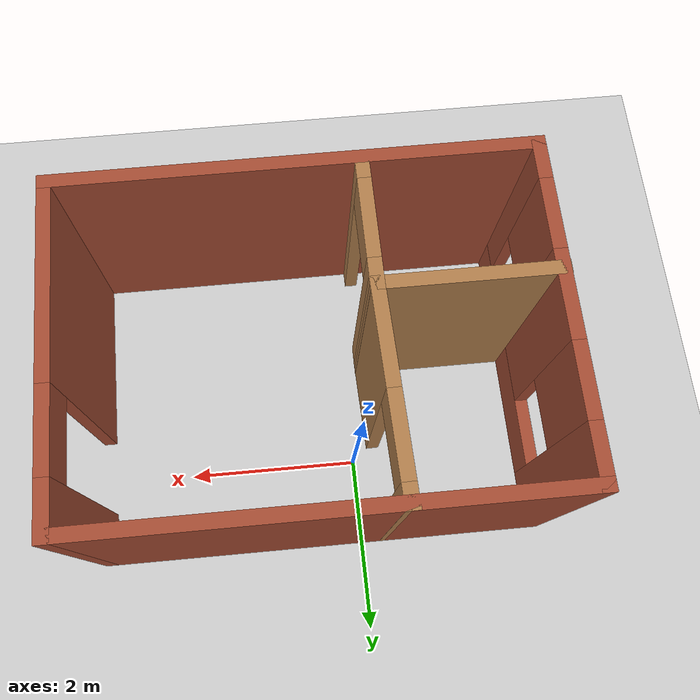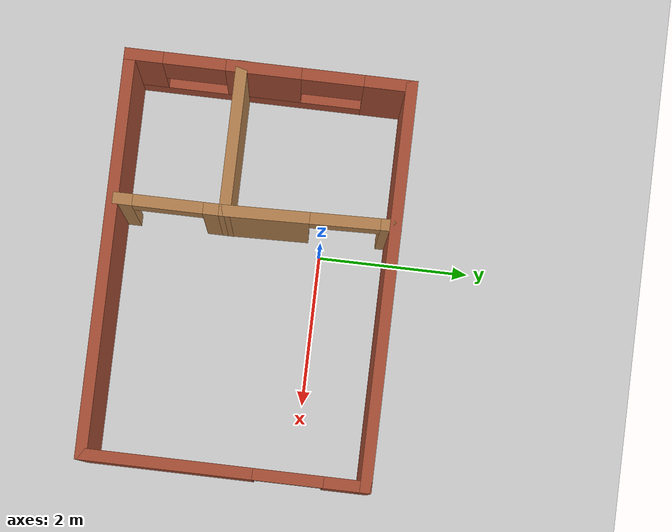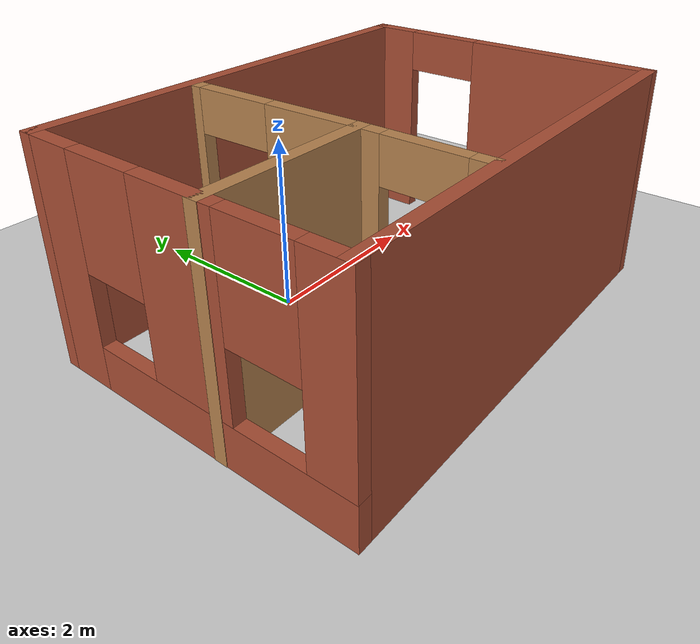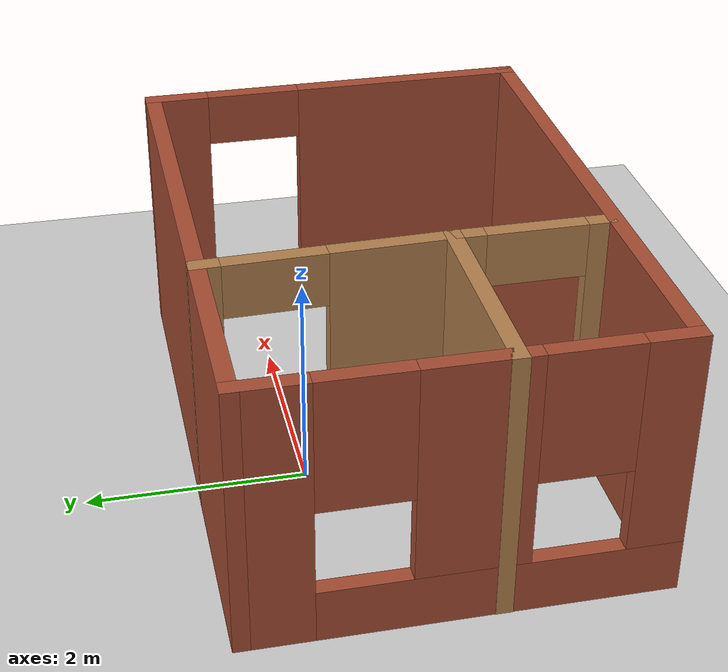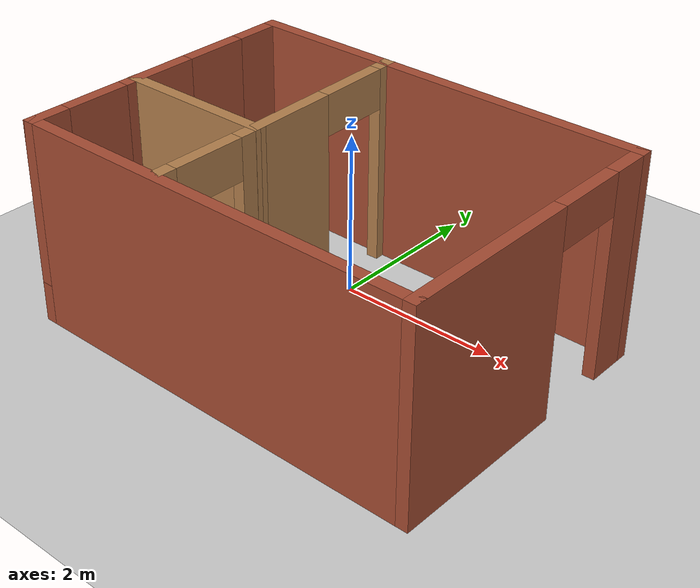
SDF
<sdf version="1.7">
 <world name="default">
  <light name="sun" type="directional">
   <pose>0 0 10 0 -0 0</pose>
   <diffuse>0.8 0.8 0.8 1</diffuse>
   <specular>0.2 0.2 0.2 1</specular>
   <attenuation>
    <range>1000</range>
    <constant>0.9</constant>
    <linear>0.01</linear>
    <quadratic>0.001</quadratic>
   </attenuation>
   <direction>-0.5 0.1 -0.9</direction>
   <spot><inner_angle>0</inner_angle><outer_angle>0</outer_angle><falloff>0</falloff></spot>
  </light>
  <model name="ground_plane">
   <static>1</static>
   <link name="link">
    <collision name="collision">
     <geometry><plane><normal>0 0 1</normal><size>100 100</size></plane></geometry>
     <surface>
      <contact><collide_bitmask>65535</collide_bitmask></contact>
      <friction><ode><mu>100</mu><mu2>50</mu2></ode></friction>
     </surface>
    </collision>
    <visual name="visual">
     <cast_shadows>0</cast_shadows>
     <geometry><plane><normal>0 0 1</normal><size>100 100</size></plane></geometry>
     <material>
      <script><uri>file://media/materials/scripts/gazebo.material</uri><name>Gazebo/Grey</name></script>
     </material>
    </visual>
   </link>
  </model>
  <gravity>0 0 -9.8</gravity>
  <magnetic_field>6e-06 2.3e-05 -4.2e-05</magnetic_field>
  <atmosphere type="adiabatic"/>
  <physics type="ode">
   <max_step_size>0.001</max_step_size>
   <real_time_factor>1</real_time_factor>
   <real_time_update_rate>1000</real_time_update_rate>
  </physics>
  <scene><ambient>0.4 0.4 0.4 1</ambient><background>0.7 0.7 0.7 1</background><shadows>1</shadows></scene>
  <audio><device>default</device></audio>
  <spherical_coordinates>
   <surface_model>EARTH_WGS84</surface_model>
   <latitude_deg>0</latitude_deg>
   <longitude_deg>0</longitude_deg>
   <elevation>0</elevation>
   <heading_deg>0</heading_deg>
  </spherical_coordinates>
  <model name="Test_Space">
   <pose>0.469983 -0.713149 0 0 -0 0</pose>
   <link name="Wall_10">
    <collision name="Wall_10_Collision">
     <geometry><box><size>2 0.15 2.5</size></box></geometry>
     <pose>0 0 1.25 0 -0 0</pose>
    </collision>
    <visual name="Wall_10_Visual">
     <pose>0 0 1.25 0 -0 0</pose>
     <geometry><box><size>2 0.15 2.5</size></box></geometry>
     <material>
      <script><uri>file://media/materials/scripts/gazebo.material</uri><name>Gazebo/Wood</name></script>
      <ambient>1 1 1 1</ambient>
     </material>
     <meta><layer>0</layer></meta>
    </visual>
    <pose>-1.62727 -0.540112 0 0 -0 0</pose>
   </link>
   <link name="Wall_11">
    <pose>-0.702269 -1.21511 0 0 -0 -1.5708</pose>
    <visual name="Wall_11_Visual_0">
     <pose>-0.575456 0 1.25 0 -0 0</pose>
     <geometry><box><size>0.349088 0.15 2.5</size></box></geometry>
     <material>
      <script><uri>file://media/materials/scripts/gazebo.material</uri><name>Gazebo/Wood</name></script>
      <ambient>1 1 1 1</ambient>
     </material>
     <meta><layer>0</layer></meta>
    </visual>
    <collision name="Wall_11_Collision_0">
     <geometry><box><size>0.349088 0.15 2.5</size></box></geometry>
     <pose>-0.575456 0 1.25 0 -0 0</pose>
    </collision>
    <visual name="Wall_11_Visual_1">
     <pose>0.624544 0 1.25 0 -0 0</pose>
     <geometry><box><size>0.250912 0.15 2.5</size></box></geometry>
     <material>
      <script><uri>file://media/materials/scripts/gazebo.material</uri><name>Gazebo/Wood</name></script>
      <ambient>1 1 1 1</ambient>
     </material>
     <meta><layer>0</layer></meta>
    </visual>
    <collision name="Wall_11_Collision_1">
     <geometry><box><size>0.250912 0.15 2.5</size></box></geometry>
     <pose>0.624544 0 1.25 0 -0 0</pose>
    </collision>
    <visual name="Wall_11_Visual_2">
     <pose>0.049088 0 2.25 0 -0 0</pose>
     <geometry><box><size>0.9 0.15 0.5</size></box></geometry>
     <material>
      <script><uri>file://media/materials/scripts/gazebo.material</uri><name>Gazebo/Wood</name></script>
      <ambient>1 1 1 1</ambient>
     </material>
     <meta><layer>0</layer></meta>
    </visual>
    <collision name="Wall_11_Collision_2">
     <geometry><box><size>0.9 0.15 0.5</size></box></geometry>
     <pose>0.049088 0 2.25 0 -0 0</pose>
    </collision>
   </link>
   <link name="Wall_13">
    <pose>-0.732215 0.546021 0 0 -0 -1.54323</pose>
    <visual name="Wall_13_Visual_0">
     <pose>-1.02791 0 1.25 0 -0 0</pose>
     <geometry><box><size>0.267281 0.15 2.5</size></box></geometry>
     <material>
      <script><uri>file://media/materials/scripts/gazebo.material</uri><name>Gazebo/Wood</name></script>
      <ambient>1 1 1 1</ambient>
     </material>
     <meta><layer>0</layer></meta>
    </visual>
    <collision name="Wall_13_Collision_0">
     <geometry><box><size>0.267281 0.15 2.5</size></box></geometry>
     <pose>-1.02791 0 1.25 0 -0 0</pose>
    </collision>
    <visual name="Wall_13_Visual_1">
     <pose>0.583641 0 1.25 0 -0 0</pose>
     <geometry><box><size>1.15581 0.15 2.5</size></box></geometry>
     <material>
      <script><uri>file://media/materials/scripts/gazebo.material</uri><name>Gazebo/Wood</name></script>
      <ambient>1 1 1 1</ambient>
     </material>
     <meta><layer>0</layer></meta>
    </visual>
    <collision name="Wall_13_Collision_1">
     <geometry><box><size>1.15581 0.15 2.5</size></box></geometry>
     <pose>0.583641 0 1.25 0 -0 0</pose>
    </collision>
    <visual name="Wall_13_Visual_2">
     <pose>-0.444264 0 2.25 0 -0 0</pose>
     <geometry><box><size>0.9 0.15 0.5</size></box></geometry>
     <material>
      <script><uri>file://media/materials/scripts/gazebo.material</uri><name>Gazebo/Wood</name></script>
      <ambient>1 1 1 1</ambient>
     </material>
     <meta><layer>0</layer></meta>
    </visual>
    <collision name="Wall_13_Collision_2">
     <geometry><box><size>0.9 0.15 0.5</size></box></geometry>
     <pose>-0.444264 0 2.25 0 -0 0</pose>
    </collision>
   </link>
   <link name="Wall_2">
    <pose>-2.54773 -0.1675 0 0 -0 -1.5708</pose>
    <visual name="Wall_2_Visual_0">
     <pose>-1.53449 0 1.25 0 -0 0</pose>
     <geometry><box><size>0.681025 0.15 2.5</size></box></geometry>
     <material>
      <script><uri>file://media/materials/scripts/gazebo.material</uri><name>Gazebo/Bricks</name></script>
      <ambient>1 1 1 1</ambient>
     </material>
     <meta><layer>0</layer></meta>
    </visual>
    <collision name="Wall_2_Collision_0">
     <geometry><box><size>0.681025 0.15 2.5</size></box></geometry>
     <pose>-1.53449 0 1.25 0 -0 0</pose>
    </collision>
    <visual name="Wall_2_Visual_1">
     <pose>0.340513 0 0.25 0 -0 0</pose>
     <geometry><box><size>3.06898 0.15 0.5</size></box></geometry>
     <material>
      <script><uri>file://media/materials/scripts/gazebo.material</uri><name>Gazebo/Bricks</name></script>
      <ambient>1 1 1 1</ambient>
     </material>
     <meta><layer>0</layer></meta>
    </visual>
    <collision name="Wall_2_Collision_1">
     <geometry><box><size>3.06898 0.15 0.5</size></box></geometry>
     <pose>0.340513 0 0.25 0 -0 0</pose>
    </collision>
    <visual name="Wall_2_Visual_2">
     <pose>0.091022 0 1.5 0 -0 0</pose>
     <geometry><box><size>0.969994 0.15 2</size></box></geometry>
     <material>
      <script><uri>file://media/materials/scripts/gazebo.material</uri><name>Gazebo/Bricks</name></script>
      <ambient>1 1 1 1</ambient>
     </material>
     <meta><layer>0</layer></meta>
    </visual>
    <collision name="Wall_2_Collision_2">
     <geometry><box><size>0.969994 0.15 2</size></box></geometry>
     <pose>0.091022 0 1.5 0 -0 0</pose>
    </collision>
    <visual name="Wall_2_Visual_3">
     <pose>1.62551 0 1.5 0 -0 0</pose>
     <geometry><box><size>0.498981 0.15 2</size></box></geometry>
     <material>
      <script><uri>file://media/materials/scripts/gazebo.material</uri><name>Gazebo/Bricks</name></script>
      <ambient>1 1 1 1</ambient>
     </material>
     <meta><layer>0</layer></meta>
    </visual>
    <collision name="Wall_2_Collision_3">
     <geometry><box><size>0.498981 0.15 2</size></box></geometry>
     <pose>1.62551 0 1.5 0 -0 0</pose>
    </collision>
    <visual name="Wall_2_Visual_4">
     <pose>-0.793975 0 1.9 0 -0 0</pose>
     <geometry><box><size>0.8 0.15 1.2</size></box></geometry>
     <material>
      <script><uri>file://media/materials/scripts/gazebo.material</uri><name>Gazebo/Bricks</name></script>
      <ambient>1 1 1 1</ambient>
     </material>
     <meta><layer>0</layer></meta>
    </visual>
    <collision name="Wall_2_Collision_4">
     <geometry><box><size>0.8 0.15 1.2</size></box></geometry>
     <pose>-0.793975 0 1.9 0 -0 0</pose>
    </collision>
    <visual name="Wall_2_Visual_5">
     <pose>0.976019 0 1.9 0 -0 0</pose>
     <geometry><box><size>0.8 0.15 1.2</size></box></geometry>
     <material>
      <script><uri>file://media/materials/scripts/gazebo.material</uri><name>Gazebo/Bricks</name></script>
      <ambient>1 1 1 1</ambient>
     </material>
     <meta><layer>0</layer></meta>
    </visual>
    <collision name="Wall_2_Collision_5">
     <geometry><box><size>0.8 0.15 1.2</size></box></geometry>
     <pose>0.976019 0 1.9 0 -0 0</pose>
    </collision>
   </link>
   <link name="Wall_3">
    <collision name="Wall_3_Collision">
     <geometry><box><size>5.25 0.15 2.5</size></box></geometry>
     <pose>0 0 1.25 0 -0 0</pose>
    </collision>
    <visual name="Wall_3_Visual">
     <pose>0 0 1.25 0 -0 0</pose>
     <geometry><box><size>5.25 0.15 2.5</size></box></geometry>
     <material>
      <script><uri>file://media/materials/scripts/gazebo.material</uri><name>Gazebo/Bricks</name></script>
      <ambient>1 1 1 1</ambient>
     </material>
     <meta><layer>0</layer></meta>
    </visual>
    <pose>0.002268 -1.9675 0 0 -0 0</pose>
   </link>
   <link name="Wall_7">
    <pose>2.55227 -0.1675 0 0 -0 1.5708</pose>
    <visual name="Wall_7_Visual_0">
     <pose>-0.755456 0 1.25 0 -0 0</pose>
     <geometry><box><size>2.23909 0.15 2.5</size></box></geometry>
     <material>
      <script><uri>file://media/materials/scripts/gazebo.material</uri><name>Gazebo/Bricks</name></script>
      <ambient>1 1 1 1</ambient>
     </material>
     <meta><layer>0</layer></meta>
    </visual>
    <collision name="Wall_7_Collision_0">
     <geometry><box><size>2.23909 0.15 2.5</size></box></geometry>
     <pose>-0.755456 0 1.25 0 -0 0</pose>
    </collision>
    <visual name="Wall_7_Visual_1">
     <pose>1.56954 0 1.25 0 -0 0</pose>
     <geometry><box><size>0.610911 0.15 2.5</size></box></geometry>
     <material>
      <script><uri>file://media/materials/scripts/gazebo.material</uri><name>Gazebo/Bricks</name></script>
      <ambient>1 1 1 1</ambient>
     </material>
     <meta><layer>0</layer></meta>
    </visual>
    <collision name="Wall_7_Collision_1">
     <geometry><box><size>0.610911 0.15 2.5</size></box></geometry>
     <pose>1.56954 0 1.25 0 -0 0</pose>
    </collision>
    <visual name="Wall_7_Visual_2">
     <pose>0.814089 0 2.25 0 -0 0</pose>
     <geometry><box><size>0.9 0.15 0.5</size></box></geometry>
     <material>
      <script><uri>file://media/materials/scripts/gazebo.material</uri><name>Gazebo/Bricks</name></script>
      <ambient>1 1 1 1</ambient>
     </material>
     <meta><layer>0</layer></meta>
    </visual>
    <collision name="Wall_7_Collision_2">
     <geometry><box><size>0.9 0.15 0.5</size></box></geometry>
     <pose>0.814089 0 2.25 0 -0 0</pose>
    </collision>
   </link>
   <link name="Wall_8">
    <collision name="Wall_8_Collision">
     <geometry><box><size>5.25 0.15 2.5</size></box></geometry>
     <pose>0 0 1.25 0 -0 0</pose>
    </collision>
    <visual name="Wall_8_Visual">
     <pose>0 0 1.25 0 -0 0</pose>
     <geometry><box><size>5.25 0.15 2.5</size></box></geometry>
     <material>
      <script><uri>file://media/materials/scripts/gazebo.material</uri><name>Gazebo/Bricks</name></script>
      <ambient>1 1 1 1</ambient>
     </material>
     <meta><layer>0</layer></meta>
    </visual>
    <pose>0.002268 1.6325 0 0 -0 3.14159</pose>
   </link>
   <static>1</static>
  </model>
 </world>
</sdf>
